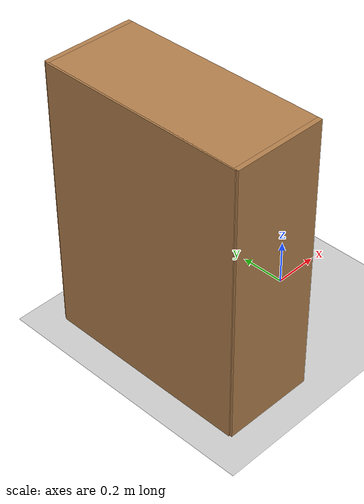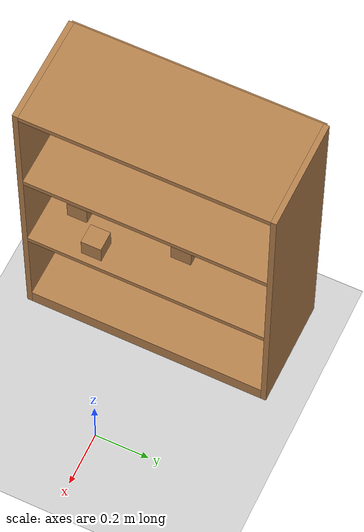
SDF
<sdf version="1.6">
 <world name="default">
  <plugin name="gazebo_geometries_plugin" filename="libgazebo_geometries_plugin.so"/>
  <plugin name="libgazebo_scene_randomiser_plugin" filename="libgazebo_scene_randomiser_plugin.so"/>
  <light name="sun" type="directional">
   <pose>0 0 10 0 -0 0</pose>
   <diffuse>0.8 0.8 0.8 1</diffuse>
   <specular>0.2 0.2 0.2 1</specular>
   <attenuation>
    <range>1000</range>
    <constant>0.9</constant>
    <linear>0.01</linear>
    <quadratic>0.001</quadratic>
   </attenuation>
   <direction>-0.5 0.1 -0.9</direction>
  </light>
  <model name="ground_plane">
   <static>1</static>
   <link name="link">
    <collision name="collision">
     <geometry><plane><normal>0 0 1</normal><size>100 100</size></plane></geometry>
     <surface>
      <contact><collide_bitmask>65535</collide_bitmask></contact>
      <friction><ode><mu>100</mu><mu2>50</mu2></ode></friction>
     </surface>
    </collision>
    <visual name="visual">
     <cast_shadows>0</cast_shadows>
     <geometry><plane><normal>0 0 1</normal><size>100 100</size></plane></geometry>
     <material>
      <script><uri>file://media/materials/scripts/gazebo.material</uri><name>Gazebo/Grey</name></script>
     </material>
    </visual>
   </link>
  </model>
  <gravity>0 0 -9.8</gravity>
  <magnetic_field>6e-06 2.3e-05 -4.2e-05</magnetic_field>
  <atmosphere type="adiabatic"/>
  <physics name="default_physics" default="0" type="ode">
   <max_step_size>0.001</max_step_size>
   <real_time_factor>1</real_time_factor>
   <real_time_update_rate>1000</real_time_update_rate>
  </physics>
  <scene><ambient>0.4 0.4 0.4 1</ambient><background>0.7 0.7 0.7 1</background><shadows>1</shadows></scene>
  <audio><device>default</device></audio>
  <spherical_coordinates>
   <surface_model>EARTH_WGS84</surface_model>
   <latitude_deg>0</latitude_deg>
   <longitude_deg>0</longitude_deg>
   <elevation>0</elevation>
   <heading_deg>0</heading_deg>
  </spherical_coordinates>
  <model name="bookshelf">
   <static>1</static>
   <link name="link">
    <inertial><mass>1</mass></inertial>
    <collision name="back">
     <pose>0 0.005 0.6 0 -0 0</pose>
     <geometry><box><size>0.9 0.01 1.2</size></box></geometry>
    </collision>
    <visual name="visual1">
     <pose>0 0.005 0.6 0 -0 0</pose>
     <geometry><box><size>0.9 0.01 1.2</size></box></geometry>
     <material>
      <script><uri>file://media/materials/scripts/gazebo.material</uri><name>Gazebo/Wood</name></script>
     </material>
    </visual>
    <collision name="left_side">
     <pose>0.45 -0.195 0.6 0 -0 0</pose>
     <geometry><box><size>0.02 0.4 1.2</size></box></geometry>
    </collision>
    <visual name="visual2">
     <pose>0.45 -0.195 0.6 0 -0 0</pose>
     <geometry><box><size>0.02 0.4 1.2</size></box></geometry>
     <material>
      <script><uri>file://media/materials/scripts/gazebo.material</uri><name>Gazebo/Wood</name></script>
     </material>
    </visual>
    <collision name="right_side">
     <pose>-0.45 -0.195 0.6 0 -0 0</pose>
     <geometry><box><size>0.02 0.4 1.2</size></box></geometry>
    </collision>
    <visual name="visual3">
     <pose>-0.45 -0.195 0.6 0 -0 0</pose>
     <geometry><box><size>0.02 0.4 1.2</size></box></geometry>
     <material>
      <script><uri>file://media/materials/scripts/gazebo.material</uri><name>Gazebo/Wood</name></script>
     </material>
    </visual>
    <collision name="bottom">
     <pose>0 -0.195 0.03 0 -0 0</pose>
     <geometry><box><size>0.88 0.4 0.06</size></box></geometry>
    </collision>
    <visual name="visual4">
     <pose>0 -0.195 0.03 0 -0 0</pose>
     <geometry><box><size>0.88 0.4 0.06</size></box></geometry>
     <material>
      <script><uri>file://media/materials/scripts/gazebo.material</uri><name>Gazebo/Wood</name></script>
     </material>
    </visual>
    <collision name="top">
     <pose>0 -0.195 1.19 0 -0 0</pose>
     <geometry><box><size>0.88 0.4 0.02</size></box></geometry>
    </collision>
    <visual name="visual5">
     <pose>0 -0.195 1.19 0 -0 0</pose>
     <geometry><box><size>0.88 0.4 0.02</size></box></geometry>
     <material>
      <script><uri>file://media/materials/scripts/gazebo.material</uri><name>Gazebo/Wood</name></script>
     </material>
    </visual>
    <collision name="low_shelf">
     <pose>0 -0.195 0.43 0 -0 0</pose>
     <geometry><box><size>0.88 0.4 0.02</size></box></geometry>
    </collision>
    <visual name="visual6">
     <pose>0 -0.195 0.43 0 -0 0</pose>
     <geometry><box><size>0.88 0.4 0.02</size></box></geometry>
     <material>
      <script><uri>file://media/materials/scripts/gazebo.material</uri><name>Gazebo/Wood</name></script>
     </material>
    </visual>
    <collision name="high_shelf">
     <pose>0 -0.195 0.8 0 -0 0</pose>
     <geometry><box><size>0.88 0.4 0.02</size></box></geometry>
    </collision>
    <visual name="visual7">
     <pose>0 -0.195 0.8 0 -0 0</pose>
     <geometry><box><size>0.88 0.4 0.02</size></box></geometry>
     <material>
      <script><uri>file://media/materials/scripts/gazebo.material</uri><name>Gazebo/Wood</name></script>
     </material>
    </visual>
   </link>
   <pose>-0.76846 0.012192 0 0 -0 1.56478</pose>
  </model>
  <model name="cylinder">
   <link name="link">
    <inertial>
     <mass>0.1</mass>
     <inertia>
      <ixx>0.00013563</ixx>
      <ixy>0</ixy>
      <ixz>0</ixz>
      <iyy>0.00013563</iyy>
      <iyz>0</iyz>
      <izz>3.125e-05</izz>
     </inertia>
    </inertial>
    <visual name="visual">
     <geometry><cylinder><radius>0.025</radius><length>0.12</length></cylinder></geometry>
     <material>
      <script><name>Gazebo/Grey</name><uri>file://media/materials/scripts/gazebo.material</uri></script>
      <shader type="vertex"><normal_map>__default__</normal_map></shader>
      <ambient>0 1 0.2 1</ambient>
      <diffuse>0.7 0.7 0.7 1</diffuse>
      <specular>0.01 0.01 0.01 1</specular>
      <emissive>0 0 0 1</emissive>
     </material>
    </visual>
    <collision name="collision">
     <geometry><cylinder><radius>0.025</radius><length>0.12</length></cylinder></geometry>
     <surface>
      <friction>
       <ode><mu>1</mu><mu2>1</mu2><fdir1>0 0 0</fdir1><slip1>0</slip1><slip2>0</slip2></ode>
       <torsional>
        <coefficient>1</coefficient>
        <patch_radius>0</patch_radius>
        <surface_radius>0</surface_radius>
        <use_patch_radius>1</use_patch_radius>
        <ode><slip>0</slip></ode>
       </torsional>
      </friction>
      <bounce><restitution_coefficient>0</restitution_coefficient><threshold>1e+06</threshold></bounce>
      <contact>
       <collide_without_contact>0</collide_without_contact>
       <collide_without_contact_bitmask>1</collide_without_contact_bitmask>
       <collide_bitmask>1</collide_bitmask>
       <ode>
        <soft_cfm>0</soft_cfm>
        <soft_erp>0.2</soft_erp>
        <kp>1e+07</kp>
        <kd>1</kd>
        <max_vel>0.1</max_vel>
        <min_depth>0.001</min_depth>
       </ode>
       <bullet>
        <split_impulse>1</split_impulse>
        <split_impulse_penetration_threshold>-0.01</split_impulse_penetration_threshold>
        <soft_cfm>0</soft_cfm>
        <soft_erp>0.2</soft_erp>
        <kp>1e+07</kp>
        <kd>1</kd>
       </bullet>
      </contact>
     </surface>
    </collision>
   </link>
   <static>0</static>
   <pose>-0.60884 -0.14743 0.49927 -0.000819 -0.002063 0</pose>
  </model>
  <model name="wood_cube_7_5cm">
   <link name="link">
    <pose>0 0 0.0375 0 -0 0</pose>
    <inertial>
     <mass>0.2249</mass>
     <inertia>
      <ixx>0.000210844</ixx>
      <ixy>0</ixy>
      <ixz>0</ixz>
      <iyy>0.000210844</iyy>
      <iyz>0</iyz>
      <izz>0.000210844</izz>
     </inertia>
    </inertial>
    <collision name="collision">
     <geometry><box><size>0.075 0.075 0.075</size></box></geometry>
     <surface>
      <contact>
       <poissons_ratio>0.347</poissons_ratio>
       <elastic_modulus>8.8e+09</elastic_modulus>
       <ode><kp>100000</kp><kd>100</kd><max_vel>100</max_vel><min_depth>0.001</min_depth></ode>
      </contact>
      <friction>
       <torsional>
        <coefficient>1</coefficient>
        <use_patch_radius>0</use_patch_radius>
        <surface_radius>0.01</surface_radius>
       </torsional>
      </friction>
     </surface>
    </collision>
    <visual name="visual">
     <geometry><box><size>0.075 0.075 0.075</size></box></geometry>
     <material>
      <script><uri>file://media/materials/scripts/gazebo.material</uri><name>Gazebo/Wood</name></script>
     </material>
    </visual>
   </link>
   <pose>-0.554832 0.075524 0.438995 0 -0 0</pose>
  </model>
  <model name="wood_cube_7_5cm_0">
   <link name="link">
    <pose>0 0 0.0375 0 -0 0</pose>
    <inertial>
     <mass>0.2249</mass>
     <inertia>
      <ixx>0.000210844</ixx>
      <ixy>0</ixy>
      <ixz>0</ixz>
      <iyy>0.000210844</iyy>
      <iyz>0</iyz>
      <izz>0.000210844</izz>
     </inertia>
    </inertial>
    <collision name="collision">
     <geometry><box><size>0.075 0.075 0.075</size></box></geometry>
     <surface>
      <contact>
       <poissons_ratio>0.347</poissons_ratio>
       <elastic_modulus>8.8e+09</elastic_modulus>
       <ode><kp>100000</kp><kd>100</kd><max_vel>100</max_vel><min_depth>0.001</min_depth></ode>
      </contact>
      <friction>
       <torsional>
        <coefficient>1</coefficient>
        <use_patch_radius>0</use_patch_radius>
        <surface_radius>0.01</surface_radius>
       </torsional>
      </friction>
     </surface>
    </collision>
    <visual name="visual">
     <geometry><box><size>0.075 0.075 0.075</size></box></geometry>
     <material>
      <script><uri>file://media/materials/scripts/gazebo.material</uri><name>Gazebo/Wood</name></script>
     </material>
    </visual>
   </link>
   <pose>-0.44032 -0.203124 0.438995 0 -0 0</pose>
  </model>
  <model name="wood_cube_7_5cm_1">
   <link name="link">
    <pose>0 0 0.0375 0 -0 0</pose>
    <inertial>
     <mass>0.2249</mass>
     <inertia>
      <ixx>0.000210844</ixx>
      <ixy>0</ixy>
      <ixz>0</ixz>
      <iyy>0.000210844</iyy>
      <iyz>0</iyz>
      <izz>0.000210844</izz>
     </inertia>
    </inertial>
    <collision name="collision">
     <geometry><box><size>0.075 0.075 0.075</size></box></geometry>
     <surface>
      <contact>
       <poissons_ratio>0.347</poissons_ratio>
       <elastic_modulus>8.8e+09</elastic_modulus>
       <ode><kp>100000</kp><kd>100</kd><max_vel>100</max_vel><min_depth>0.001</min_depth></ode>
      </contact>
      <friction>
       <torsional>
        <coefficient>1</coefficient>
        <use_patch_radius>0</use_patch_radius>
        <surface_radius>0.01</surface_radius>
       </torsional>
      </friction>
     </surface>
    </collision>
    <visual name="visual">
     <geometry><box><size>0.075 0.075 0.075</size></box></geometry>
     <material>
      <script><uri>file://media/materials/scripts/gazebo.material</uri><name>Gazebo/Wood</name></script>
     </material>
    </visual>
   </link>
   <pose>-0.55309 -0.311898 0.438995 0 -0 0</pose>
  </model>
 </world>
</sdf>
